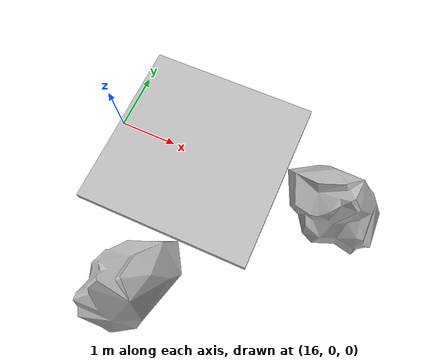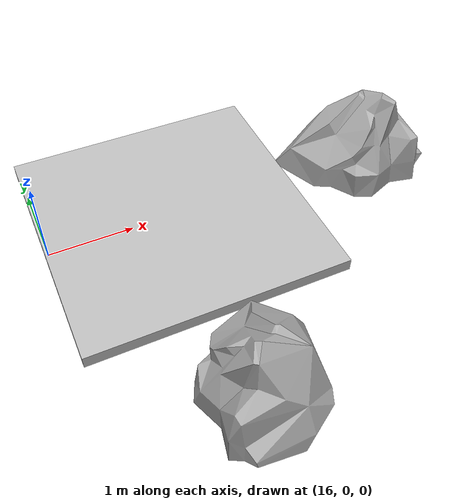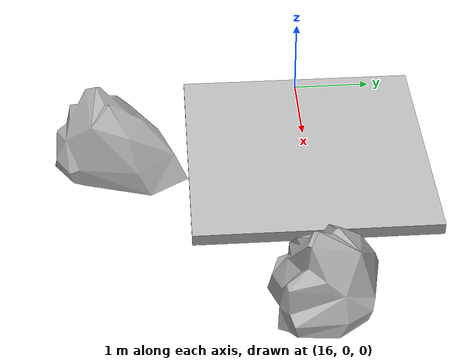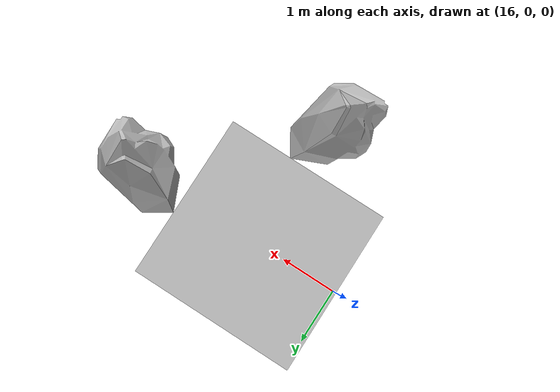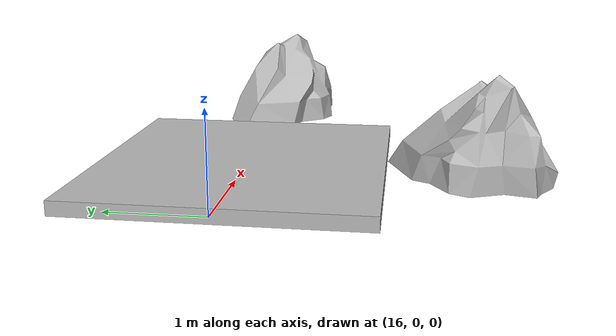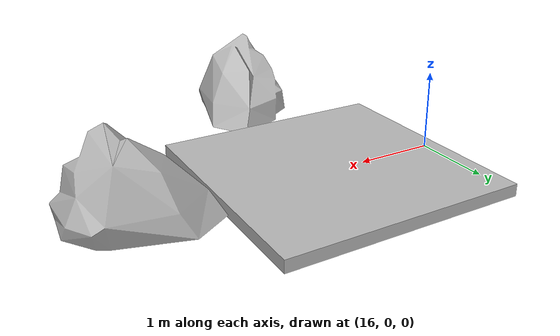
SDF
<sdf version="1.6">
 <world name="SRC_finals">
  <include>
   <name>walkway_11</name>
   <pose>17.48590958444087
      -2.225775119768514e-15
      -0.052151
      0
      0
      1.5707963267948963</pose>
   <uri>model://walkway_finish_adjacent</uri>
  </include>
  <include>
   <name>bling_13</name>
   <pose>17.48590958444087
      -2.6240000000000023
      0
      0
      0
      3.1415926535897927</pose>
   <uri>model://mars_rock_3</uri>
  </include>
  <include>
   <name>bling_14</name>
   <pose>20.10990958444087
      -3.2644786310942704e-15
      0
      0
      0
      -1.570796326794897</pose>
   <uri>model://mars_rock_3</uri>
  </include>
 </world>
</sdf>
